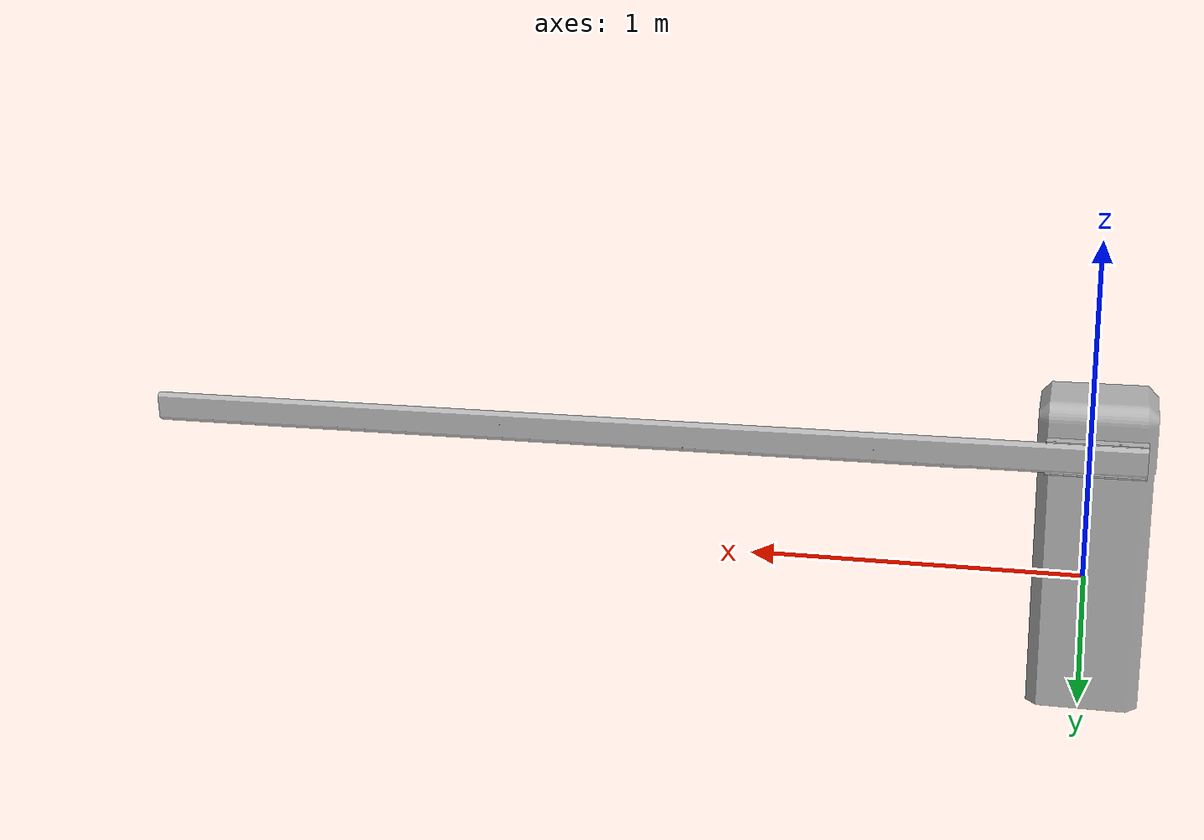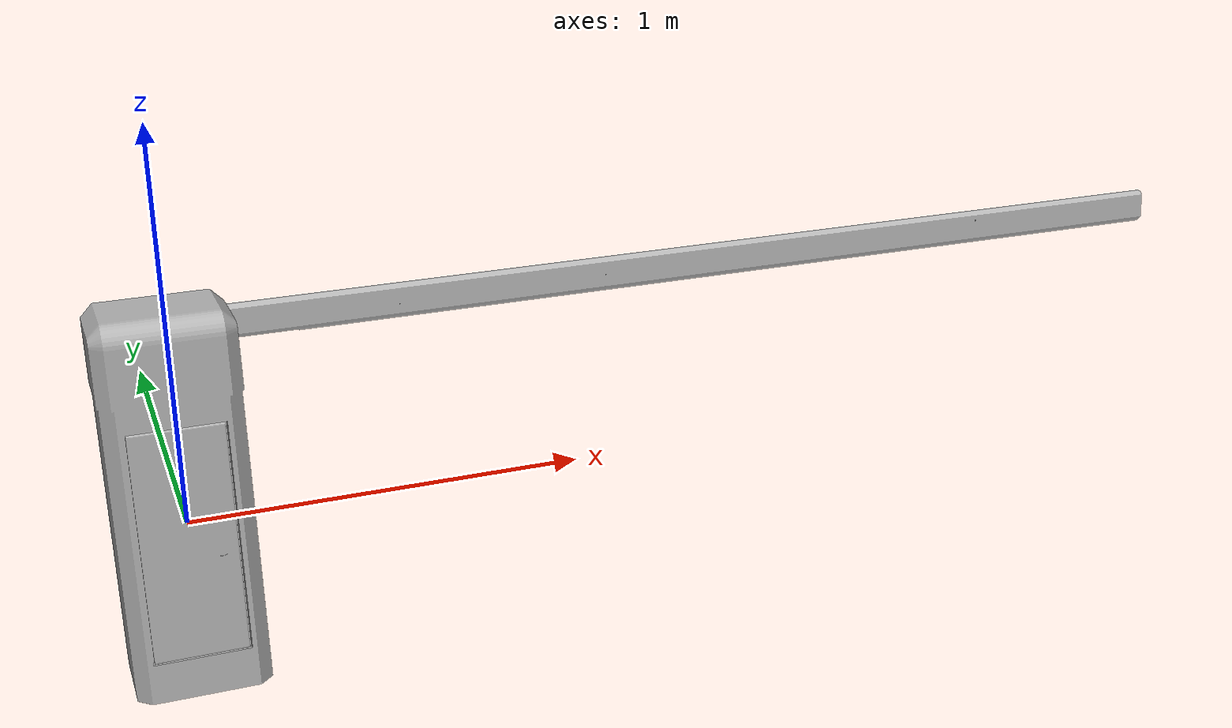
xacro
<?xml version="1.0" ?>
<robot name="Parking_Barrier" xmlns:xacro="http://www.ros.org/wiki/xacro">

<xacro:include filename="$(find Parking_Barrier_description)/urdf/materials.xacro" />
<xacro:include filename="$(find Parking_Barrier_description)/urdf/Parking_Barrier.trans" />
<xacro:include filename="$(find Parking_Barrier_description)/urdf/Parking_Barrier.gazebo" />
<link name="base_link">
  <inertial>
    <origin rpy="0 0 0" xyz="-0.015792478359560432 -0.0348550477581871 0.10476467691564022"/>
    <mass value="20.7066181110953"/>
    <inertia ixx="2.008589" ixy="0.00059" ixz="0.000278" iyy="2.042894" iyz="-0.147669" izz="0.580291"/>
  </inertial>
  <visual>
    <origin rpy="0 0 0" xyz="0 0 0"/>
    <geometry>
      <mesh filename="package://Parking_Barrier_description/meshes/base_link.stl" scale="0.001 0.001 0.001"/>
    </geometry>
    <material name="silver"/>
  </visual>
  <collision>
    <origin rpy="0 0 0" xyz="0 0 0"/>
    <geometry>
      <mesh filename="package://Parking_Barrier_description/meshes/base_link.stl" scale="0.001 0.001 0.001"/>
    </geometry>
  </collision>
</link>

<link name="barrier_1">
  <inertial>
    <origin rpy="0 0 0" xyz="1.3077866189318545 0.085480447707065 -0.007595444557914832"/>
    <mass value="62.329658342127686"/>
    <inertia ixx="0.043257" ixy="-0.096403" ixz="0.010631" iyy="49.255651" iyz="-0.00236" izz="49.228778"/>
  </inertial>
  <visual>
    <origin rpy="0 0 0" xyz="0.016028 -0.145074 -0.425841"/>
    <geometry>
      <mesh filename="package://Parking_Barrier_description/meshes/barrier_1.stl" scale="0.001 0.001 0.001"/>
    </geometry>
    <material name="silver"/>
  </visual>
  <collision>
    <origin rpy="0 0 0" xyz="0.016028 -0.145074 -0.425841"/>
    <geometry>
      <mesh filename="package://Parking_Barrier_description/meshes/barrier_1.stl" scale="0.001 0.001 0.001"/>
    </geometry>
  </collision>
</link>

<joint name="Rev1" type="revolute">
  <origin rpy="0 0 0" xyz="-0.016028 0.145074 0.425841"/>
  <parent link="base_link"/>
  <child link="barrier_1"/>
  <axis xyz="0.0 0.996195 -0.087156"/>
  <limit effort="100" lower="-1.570796" upper="0.0" velocity="100"/>
</joint>

</robot>

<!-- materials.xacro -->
<robot name="Parking_Barrier" xmlns:xacro="http://www.ros.org/wiki/xacro" >

<material name="silver">
  <color rgba="0.700 0.700 0.700 1.000"/>
</material>

</robot>

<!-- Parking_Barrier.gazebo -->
<robot name="Parking_Barrier" xmlns:xacro="http://www.ros.org/wiki/xacro" >

<xacro:property name="body_color" value="Gazebo/Silver" />

<gazebo>
  <plugin filename="libgazebo_ros_control.so" name="control"/>
</gazebo>
<gazebo reference="base_link">
  <material>${body_color}</material>
  <mu1>0.2</mu1>
  <mu2>0.2</mu2>
  <selfCollide>true</selfCollide>
  <gravity>true</gravity>
</gazebo>

<gazebo reference="barrier_1">
  <material>${body_color}</material>
  <mu1>0.2</mu1>
  <mu2>0.2</mu2>
  <selfCollide>true</selfCollide>
</gazebo>

</robot>
